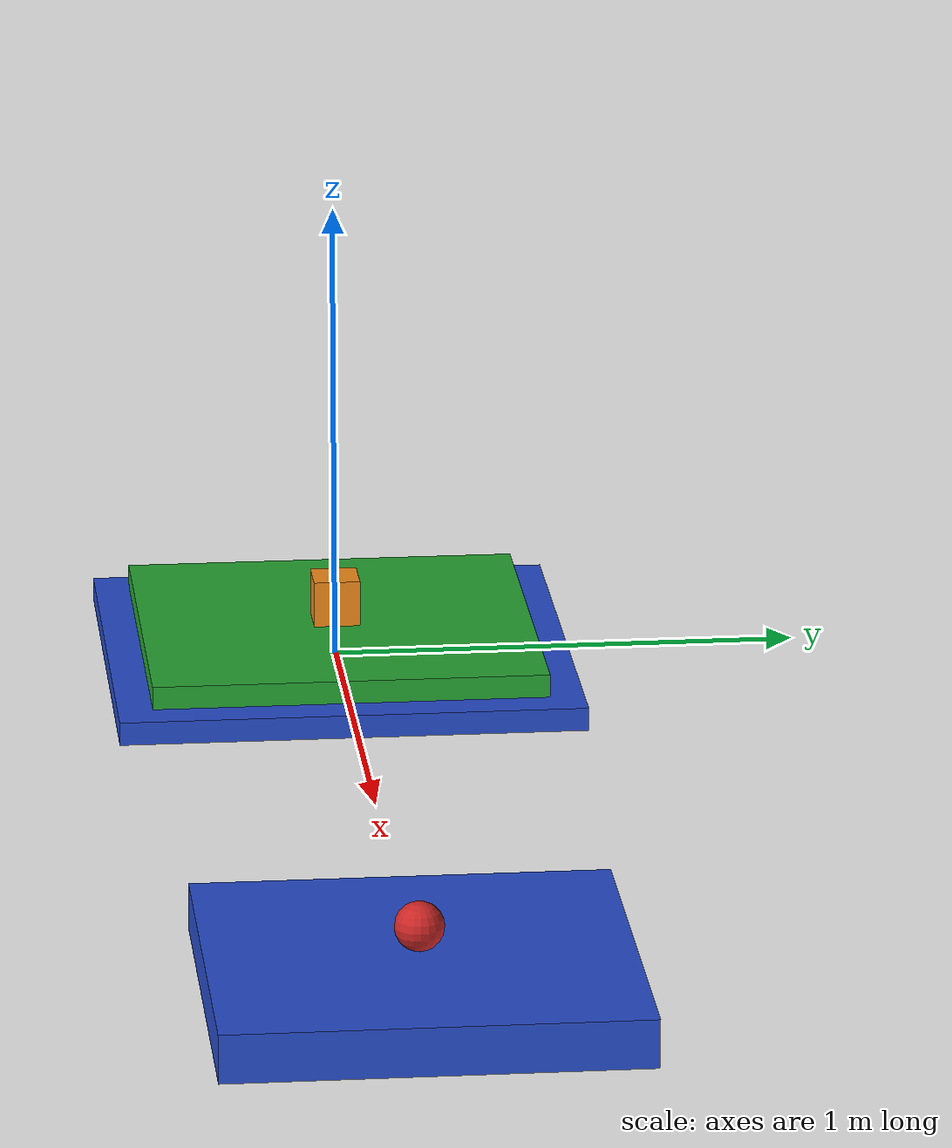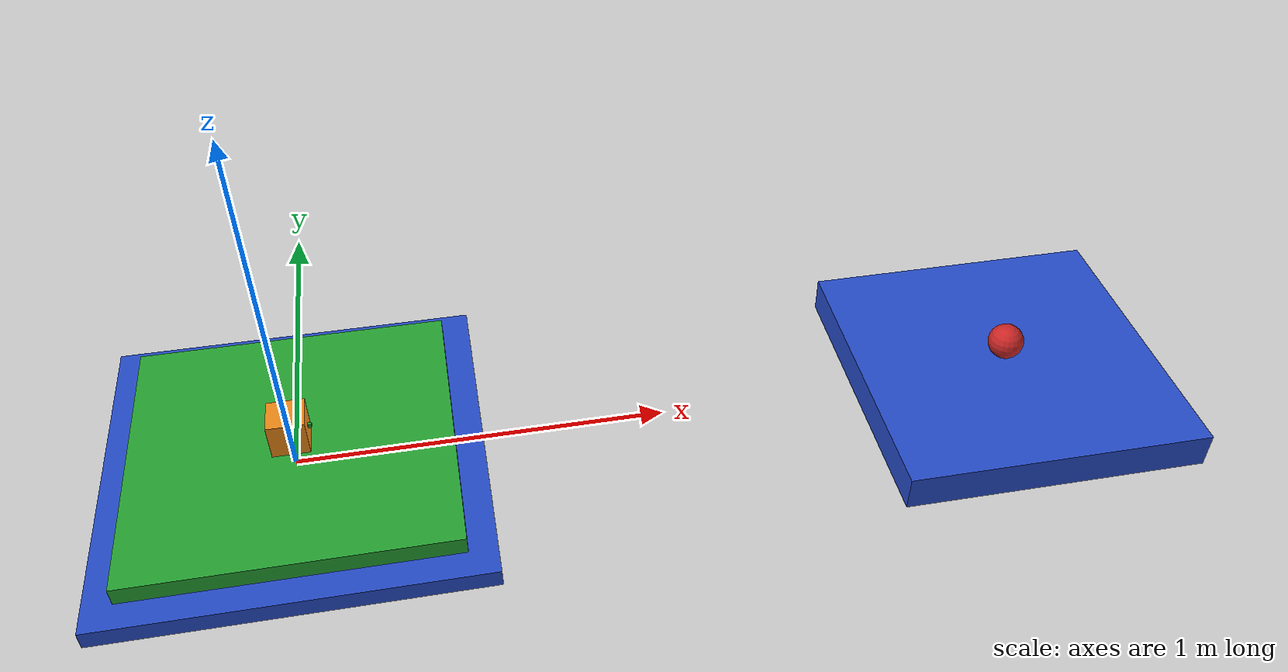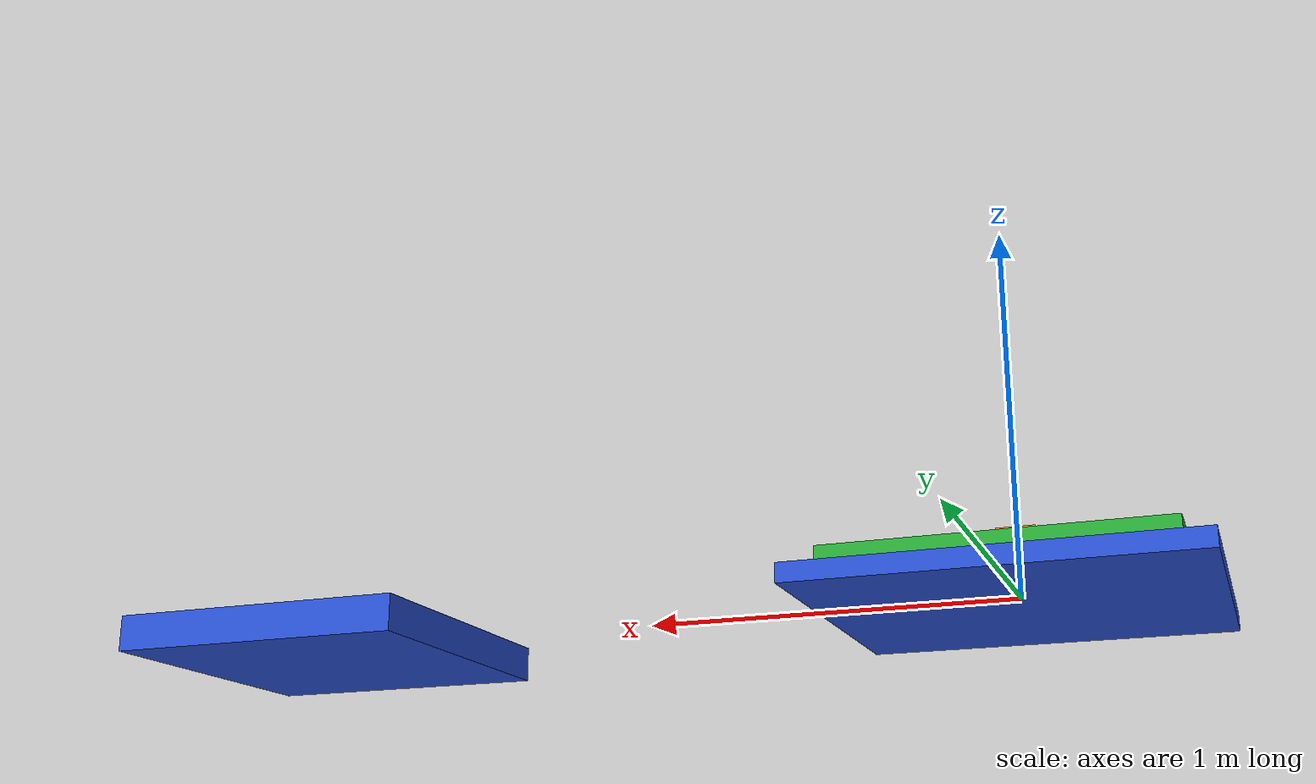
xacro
<?xml version="1.0"?>
<robot name="task_des" xmlns:xacro="http://www.ros.org/wiki/xacro">>

  <xacro:include filename="$(find task_des)/urdf/task_des.gazebo" />

  <link name="base">
      <inertial>
          <mass value="1000"/>
          <origin xyz="0.0 0.0 0.0" rpy="0.0 0.0 0.0"/>
          <inertia ixx="100" ixy="0.0" ixz="0.0" iyy="100" iyz="0.0" izz="100"/>
      </inertial>

      <visual>
        <origin xyz="0 0 0" rpy="0 0 0"/>
        <geometry>
            <box size="1 1 0.05"/>
        </geometry>
        <material name="blue"/>
      </visual>

      <collision>
        <origin xyz="0 0 0" rpy="0.0 0.0 0.0"/>
        <geometry>
            <box size="1 1 0.05"/>
        </geometry>
      </collision>
  </link>

  <joint name="joont0" type="prismatic">
    <axis xyz="0 1 0"/>
    <limit effort="1000" lower="-0.4" upper="0.4" velocity="1" />
    <origin xyz="0 0 0.052" rpy="0 0 0"/>
    <parent link="base"/>
    <child link="base1"/>
  </joint>

  <link name="base1">
    <inertial>
        <mass value="10"/>
        <origin xyz="0.0 0.0 0.0" rpy="0.0 0.0 0.0"/>
        <inertia ixx="1" ixy="0.0" ixz="0.0" iyy="1" iyz="0.0" izz="1"/>
    </inertial>

    <visual>
      <origin xyz="0 0 0" rpy="0 0 0"/>
      <geometry>
          <box size="0.85 0.85 0.05"/>
      </geometry>
      <material name="green"/>
    </visual>

    <collision>
      <origin xyz="0 0 0" rpy="0.0 0.0 0.0"/>
      <geometry>
          <box size="0.85 0.85 0.05"/>
      </geometry>
    </collision>
  </link>

  <transmission name="trans_joont0">
    <type>transmission_interface/SimpleTransmission</type>
    <joint name="joont0">
        <hardwareInterface>hardware_interface/EffortJointInterface</hardwareInterface>
    </joint>
    <actuator name="motor_joont0">
        <hardwareInterface>hardware_interface/EffortJointInterface</hardwareInterface>
        <mechanicalReduction>1</mechanicalReduction>
    </actuator>
  </transmission>

  <link name="slider">
      <inertial>
          <mass value="2"/>
          <origin xyz="0.0 0.0 0.0" rpy="0.0 0.0 0.0"/>
          <inertia ixx="1" ixy="0.0" ixz="0.0" iyy="1" iyz="0.0" izz="1"/>
      </inertial>

      <visual>
        <origin xyz="0 0 0" rpy="0 0 0"/>
        <geometry>
            <box size="0.1 0.1 0.1"/>
        </geometry>
        <material name="orange"/>
      </visual>

      <collision>
        <origin xyz="0 0 0" rpy="0.0 0.0 0.0"/>
        <geometry>
            <box size="0.1 0.1 0.1"/>
        </geometry>
      </collision>
  </link>

  <joint name="joont1" type="prismatic">
    <axis xyz="1 0 0"/>
    <limit effort="1000" lower="-0.4" upper="0.4" velocity="1" />
    <origin rpy="0 0 0" xyz="0 0 0.075" />
    <parent link="base1"/>
    <child link="slider"/>
  </joint>

  <transmission name="trans_joont1">
    <type>transmission_interface/SimpleTransmission</type>
    <joint name="joont1">
        <hardwareInterface>hardware_interface/EffortJointInterface</hardwareInterface>
    </joint>
    <actuator name="motor_joont1">
        <hardwareInterface>hardware_interface/EffortJointInterface</hardwareInterface>
        <mechanicalReduction>1</mechanicalReduction>
    </actuator>
  </transmission>

  <link name="camera">
    <collision>
      <origin xyz="0 0 0" rpy="0 0 0"/>
      <geometry>
        <box size=""/>
      </geometry>
    </collision>
    <visual>
      <origin xyz="0 0 0" rpy="0 0 0"/>
      <geometry>
        <box size="0.01 0.01 0.01"/>
      </geometry>
      <material name="green"/>
    </visual>
    <inertial>
      <mass value="0.1" />
      <origin xyz="0 0 0" rpy="0 0 0"/>
      <inertia ixx="0.1" ixy="0" ixz="0" iyy="0.1" iyz="0" izz="0.1" />
    </inertial>
  </link>

  <joint name="camera_joint" type="fixed">
    <axis xyz="1.0 0.0 0.0"/>
    <origin xyz="0.055 0 0" rpy="0 0 0"/>
    <parent link="slider"/>
    <child link="camera"/>
  </joint>

  <!-- Now the 2nd Base + Ball description follows -->

  <joint name="obase2" type="floating">
    <axis xyz="1 0 0"/>
    <origin xyz="2 0 0" rpy="0 0 0"/>
    <parent link="base"/>
    <child link="base2"/>
  </joint>

  <link name="base2">
    <inertial>
        <mass value="1000"/>
        <origin xyz="0 0.0 0.0" rpy="0.0 0.0 0.0"/>
        <inertia ixx="100" ixy="0.0" ixz="0.0" iyy="100" iyz="0.0" izz="100"/>
    </inertial>

    <visual>
      <origin xyz="0 0 0" rpy="0 0 0"/>
      <geometry>
          <box size="0.85 0.85 0.1"/>
      </geometry>
      <material name="blue"/>
    </visual>

    <collision>
      <origin xyz="0 0 0" rpy="0.0 0.0 0.0"/>
      <geometry>
          <box size="0.85 0.85 0.1"/>
      </geometry>
    </collision>
  </link>

  <link name="ball">
    <inertial>
        <mass value="2"/>
        <origin xyz="0.0 0.0 0.0" rpy="0.0 0.0 0.0"/>
        <inertia ixx="1" ixy="0.0" ixz="0.0" iyy="1" iyz="0.0" izz="1"/>
    </inertial>

    <visual>
      <origin xyz="0 0 0" rpy="0 0 0"/>
      <geometry>
        <sphere radius="0.05"/>
      </geometry>
      <material name="red"/>
    </visual>

    <collision>
      <origin xyz="0 0 0" rpy="0.0 0.0 0.0"/>
      <geometry>
        <sphere radius="0.05"/>
      </geometry>
    </collision>
  </link>

  <joint name="joont2" type="prismatic">
    <axis xyz="0 1 0"/>
    <limit effort="1000" lower="-0.4" upper="0.4" velocity="1" />
    <origin rpy="0 0 0" xyz="0 0 0.1" />
    <parent link="base2"/>
    <child link="ball"/>
  </joint>

  <transmission name="trans_joont2">
    <type>transmission_interface/SimpleTransmission</type>
    <joint name="joont2">
        <hardwareInterface>hardware_interface/EffortJointInterface</hardwareInterface>
    </joint>
    <actuator name="motor_joont2">
        <hardwareInterface>hardware_interface/EffortJointInterface</hardwareInterface>
        <mechanicalReduction>1</mechanicalReduction>
    </actuator>
  </transmission>

</robot>
